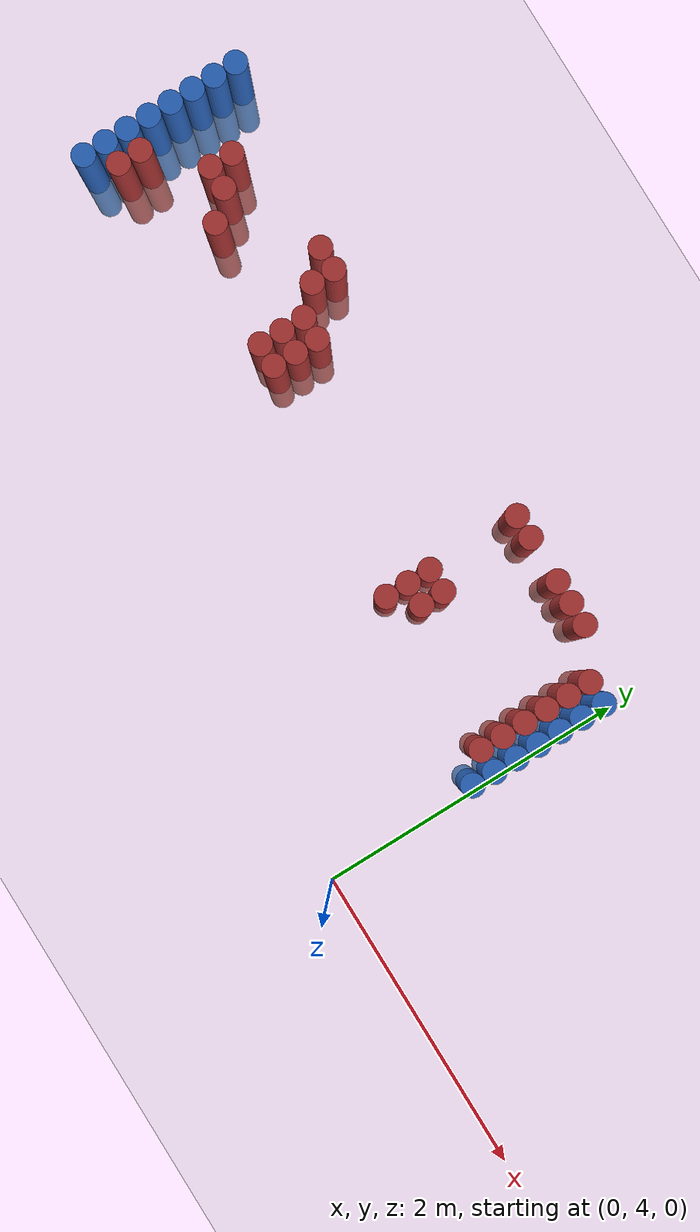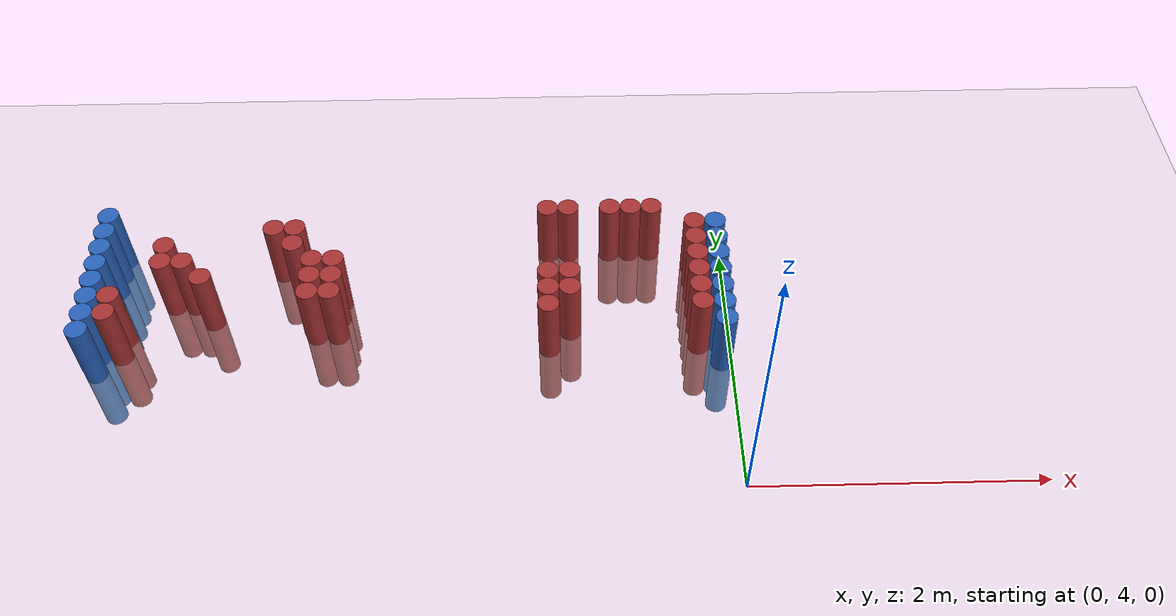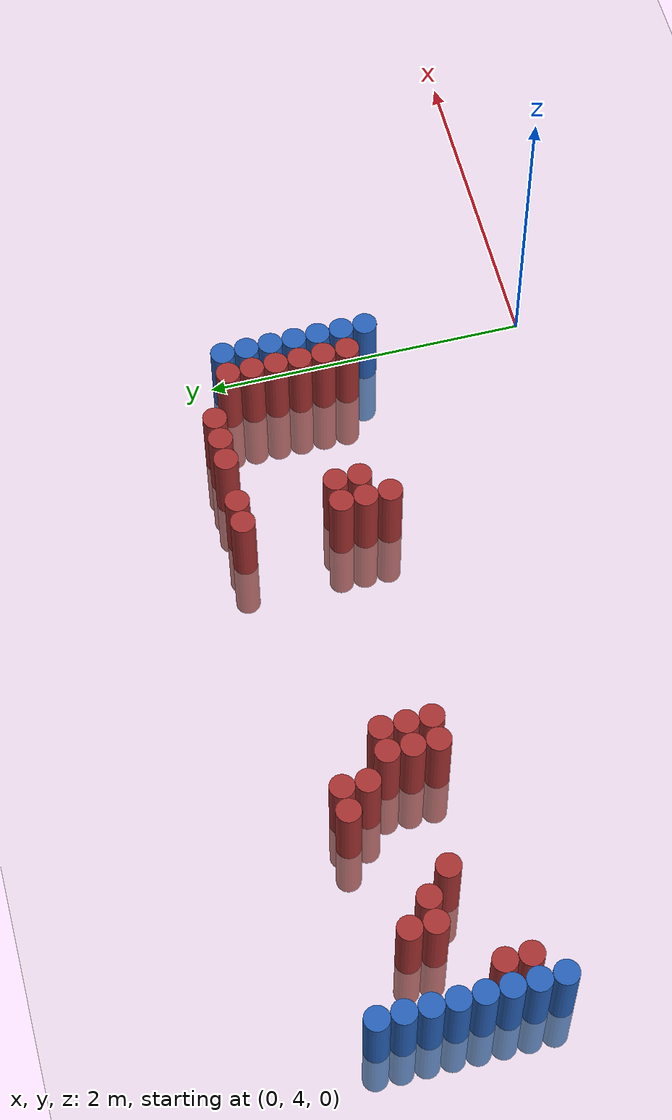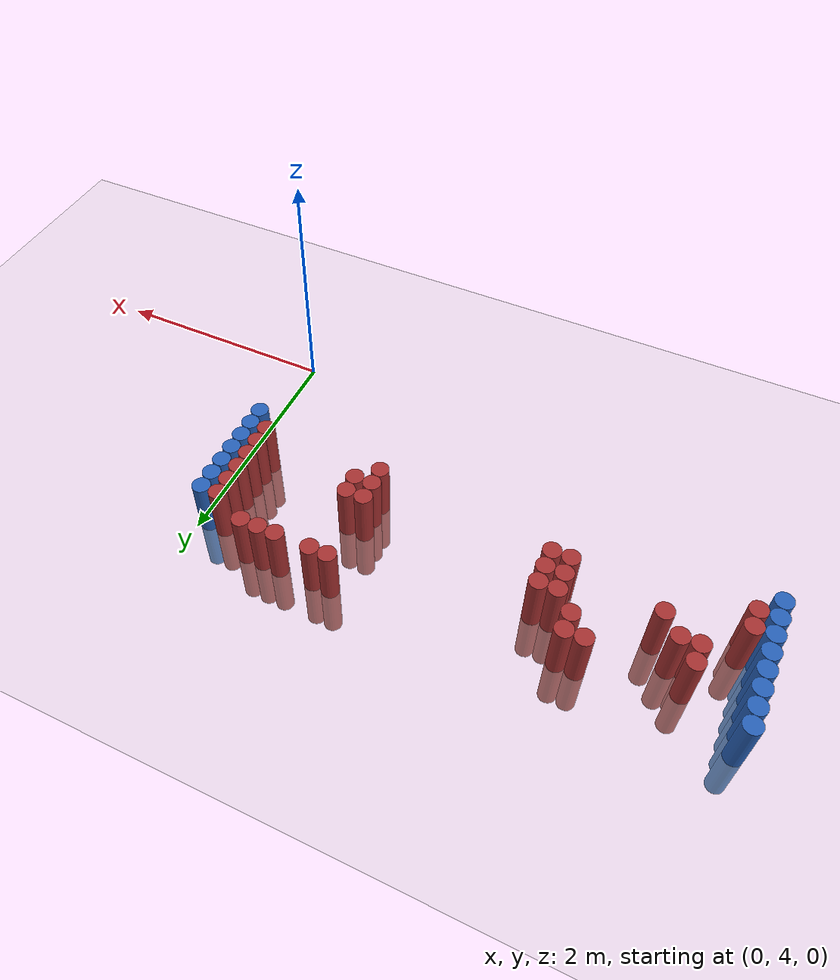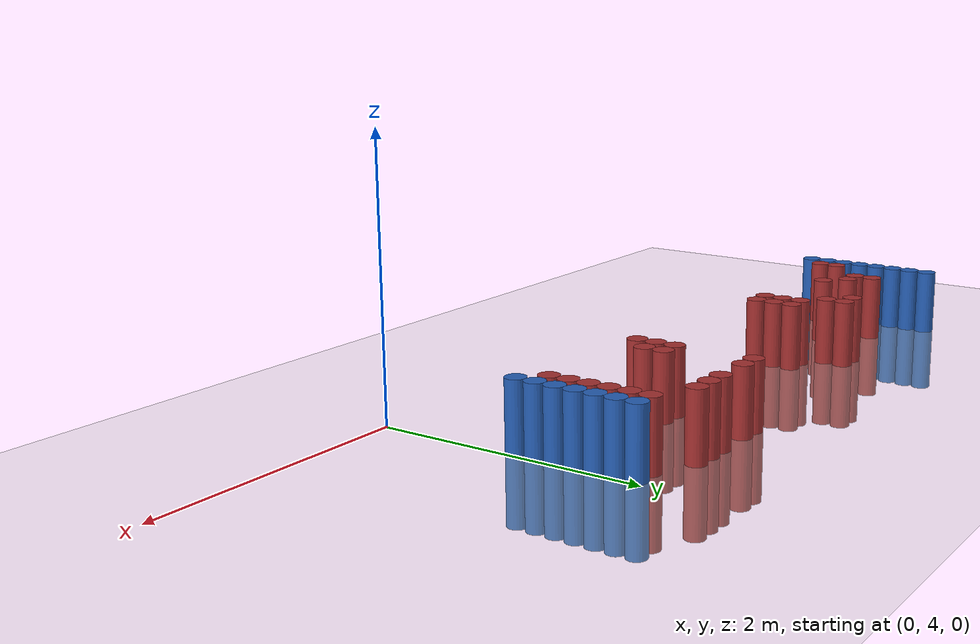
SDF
<sdf version="1.6">
 <world name="world_213">
  <model name="ground_plane">
   <static>1</static>
   <link name="link">
    <collision name="collision">
     <geometry><plane><normal>0 0 1</normal><size>100 100</size></plane></geometry>
     <surface><friction><ode><mu>100</mu><mu2>50</mu2></ode></friction></surface>
    </collision>
    <visual name="visual">
     <cast_shadows>0</cast_shadows>
     <geometry><plane><normal>0 0 1</normal><size>100 100</size></plane></geometry>
     <material>
      <script><uri>file://media/materials/scripts/gazebo.material</uri><name>Gazebo/Grey</name></script>
     </material>
    </visual>
   </link>
  </model>
  <model name="unit_cylinder_94">
   <static>1</static>
   <pose>-0.075000 5.025000 0.000000 0.000000 0.000000 0.000000</pose>
   <link name="link">
    <inertial>
     <mass>1</mass>
     <inertia><ixx>0.145833</ixx><ixy>0</ixy><ixz>0</ixz><iyy>0.145833</iyy><iyz>0</iyz><izz>0.125</izz></inertia>
    </inertial>
    <collision name="collision">
     <geometry><cylinder><radius>0.075000</radius><length>1</length></cylinder></geometry>
    </collision>
    <visual name="visual">
     <geometry><cylinder><radius>0.075000</radius><length>1</length></cylinder></geometry>
     <material>
      <ambient>0.152000 0.379000 0.720000 1</ambient>
      <diffuse>0.152000 0.379000 0.720000 1</diffuse>
     </material>
     <material>
      <script><name>Gazebo/Grey</name><uri>file://media/materials/scripts/gazebo.material</uri></script>
     </material>
    </visual>
   </link>
  </model>
  <model name="unit_cylinder_95">
   <static>1</static>
   <pose>-4.425000 5.025000 0.000000 0.000000 0.000000 0.000000</pose>
   <link name="link">
    <inertial>
     <mass>1</mass>
     <inertia><ixx>0.145833</ixx><ixy>0</ixy><ixz>0</ixz><iyy>0.145833</iyy><iyz>0</iyz><izz>0.125</izz></inertia>
    </inertial>
    <collision name="collision">
     <geometry><cylinder><radius>0.075000</radius><length>1</length></cylinder></geometry>
    </collision>
    <visual name="visual">
     <geometry><cylinder><radius>0.075000</radius><length>1</length></cylinder></geometry>
     <material>
      <ambient>0.152000 0.379000 0.720000 1</ambient>
      <diffuse>0.152000 0.379000 0.720000 1</diffuse>
     </material>
     <material>
      <script><name>Gazebo/Grey</name><uri>file://media/materials/scripts/gazebo.material</uri></script>
     </material>
    </visual>
   </link>
  </model>
  <model name="unit_cylinder_96">
   <static>1</static>
   <pose>-4.425000 5.175000 0.000000 0.000000 0.000000 0.000000</pose>
   <link name="link">
    <inertial>
     <mass>1</mass>
     <inertia><ixx>0.145833</ixx><ixy>0</ixy><ixz>0</ixz><iyy>0.145833</iyy><iyz>0</iyz><izz>0.125</izz></inertia>
    </inertial>
    <collision name="collision">
     <geometry><cylinder><radius>0.075000</radius><length>1</length></cylinder></geometry>
    </collision>
    <visual name="visual">
     <geometry><cylinder><radius>0.075000</radius><length>1</length></cylinder></geometry>
     <material>
      <ambient>0.152000 0.379000 0.720000 1</ambient>
      <diffuse>0.152000 0.379000 0.720000 1</diffuse>
     </material>
     <material>
      <script><name>Gazebo/Grey</name><uri>file://media/materials/scripts/gazebo.material</uri></script>
     </material>
    </visual>
   </link>
  </model>
  <model name="unit_cylinder_97">
   <static>1</static>
   <pose>-4.425000 5.325000 0.000000 0.000000 0.000000 0.000000</pose>
   <link name="link">
    <inertial>
     <mass>1</mass>
     <inertia><ixx>0.145833</ixx><ixy>0</ixy><ixz>0</ixz><iyy>0.145833</iyy><iyz>0</iyz><izz>0.125</izz></inertia>
    </inertial>
    <collision name="collision">
     <geometry><cylinder><radius>0.075000</radius><length>1</length></cylinder></geometry>
    </collision>
    <visual name="visual">
     <geometry><cylinder><radius>0.075000</radius><length>1</length></cylinder></geometry>
     <material>
      <ambient>0.152000 0.379000 0.720000 1</ambient>
      <diffuse>0.152000 0.379000 0.720000 1</diffuse>
     </material>
     <material>
      <script><name>Gazebo/Grey</name><uri>file://media/materials/scripts/gazebo.material</uri></script>
     </material>
    </visual>
   </link>
  </model>
  <model name="unit_cylinder_98">
   <static>1</static>
   <pose>-4.425000 5.475000 0.000000 0.000000 0.000000 0.000000</pose>
   <link name="link">
    <inertial>
     <mass>1</mass>
     <inertia><ixx>0.145833</ixx><ixy>0</ixy><ixz>0</ixz><iyy>0.145833</iyy><iyz>0</iyz><izz>0.125</izz></inertia>
    </inertial>
    <collision name="collision">
     <geometry><cylinder><radius>0.075000</radius><length>1</length></cylinder></geometry>
    </collision>
    <visual name="visual">
     <geometry><cylinder><radius>0.075000</radius><length>1</length></cylinder></geometry>
     <material>
      <ambient>0.152000 0.379000 0.720000 1</ambient>
      <diffuse>0.152000 0.379000 0.720000 1</diffuse>
     </material>
     <material>
      <script><name>Gazebo/Grey</name><uri>file://media/materials/scripts/gazebo.material</uri></script>
     </material>
    </visual>
   </link>
  </model>
  <model name="unit_cylinder_99">
   <static>1</static>
   <pose>-4.425000 5.625000 0.000000 0.000000 0.000000 0.000000</pose>
   <link name="link">
    <inertial>
     <mass>1</mass>
     <inertia><ixx>0.145833</ixx><ixy>0</ixy><ixz>0</ixz><iyy>0.145833</iyy><iyz>0</iyz><izz>0.125</izz></inertia>
    </inertial>
    <collision name="collision">
     <geometry><cylinder><radius>0.075000</radius><length>1</length></cylinder></geometry>
    </collision>
    <visual name="visual">
     <geometry><cylinder><radius>0.075000</radius><length>1</length></cylinder></geometry>
     <material>
      <ambient>0.152000 0.379000 0.720000 1</ambient>
      <diffuse>0.152000 0.379000 0.720000 1</diffuse>
     </material>
     <material>
      <script><name>Gazebo/Grey</name><uri>file://media/materials/scripts/gazebo.material</uri></script>
     </material>
    </visual>
   </link>
  </model>
  <model name="unit_cylinder_100">
   <static>1</static>
   <pose>-4.425000 5.775000 0.000000 0.000000 0.000000 0.000000</pose>
   <link name="link">
    <inertial>
     <mass>1</mass>
     <inertia><ixx>0.145833</ixx><ixy>0</ixy><ixz>0</ixz><iyy>0.145833</iyy><iyz>0</iyz><izz>0.125</izz></inertia>
    </inertial>
    <collision name="collision">
     <geometry><cylinder><radius>0.075000</radius><length>1</length></cylinder></geometry>
    </collision>
    <visual name="visual">
     <geometry><cylinder><radius>0.075000</radius><length>1</length></cylinder></geometry>
     <material>
      <ambient>0.152000 0.379000 0.720000 1</ambient>
      <diffuse>0.152000 0.379000 0.720000 1</diffuse>
     </material>
     <material>
      <script><name>Gazebo/Grey</name><uri>file://media/materials/scripts/gazebo.material</uri></script>
     </material>
    </visual>
   </link>
  </model>
  <model name="unit_cylinder_101">
   <static>1</static>
   <pose>-4.425000 5.925000 0.000000 0.000000 0.000000 0.000000</pose>
   <link name="link">
    <inertial>
     <mass>1</mass>
     <inertia><ixx>0.145833</ixx><ixy>0</ixy><ixz>0</ixz><iyy>0.145833</iyy><iyz>0</iyz><izz>0.125</izz></inertia>
    </inertial>
    <collision name="collision">
     <geometry><cylinder><radius>0.075000</radius><length>1</length></cylinder></geometry>
    </collision>
    <visual name="visual">
     <geometry><cylinder><radius>0.075000</radius><length>1</length></cylinder></geometry>
     <material>
      <ambient>0.152000 0.379000 0.720000 1</ambient>
      <diffuse>0.152000 0.379000 0.720000 1</diffuse>
     </material>
     <material>
      <script><name>Gazebo/Grey</name><uri>file://media/materials/scripts/gazebo.material</uri></script>
     </material>
    </visual>
   </link>
  </model>
  <model name="unit_cylinder_102">
   <static>1</static>
   <pose>-4.425000 6.075000 0.000000 0.000000 0.000000 0.000000</pose>
   <link name="link">
    <inertial>
     <mass>1</mass>
     <inertia><ixx>0.145833</ixx><ixy>0</ixy><ixz>0</ixz><iyy>0.145833</iyy><iyz>0</iyz><izz>0.125</izz></inertia>
    </inertial>
    <collision name="collision">
     <geometry><cylinder><radius>0.075000</radius><length>1</length></cylinder></geometry>
    </collision>
    <visual name="visual">
     <geometry><cylinder><radius>0.075000</radius><length>1</length></cylinder></geometry>
     <material>
      <ambient>0.152000 0.379000 0.720000 1</ambient>
      <diffuse>0.152000 0.379000 0.720000 1</diffuse>
     </material>
     <material>
      <script><name>Gazebo/Grey</name><uri>file://media/materials/scripts/gazebo.material</uri></script>
     </material>
    </visual>
   </link>
  </model>
  <model name="unit_cylinder_126">
   <static>1</static>
   <pose>-4.275000 5.175000 0.000000 0.000000 0.000000 0.000000</pose>
   <link name="link">
    <inertial>
     <mass>1</mass>
     <inertia><ixx>0.145833</ixx><ixy>0</ixy><ixz>0</ixz><iyy>0.145833</iyy><iyz>0</iyz><izz>0.125</izz></inertia>
    </inertial>
    <collision name="collision">
     <geometry><cylinder><radius>0.075000</radius><length>1</length></cylinder></geometry>
    </collision>
    <visual name="visual">
     <geometry><cylinder><radius>0.075000</radius><length>1</length></cylinder></geometry>
     <material>
      <ambient>0.648000 0.192000 0.192000 1</ambient>
      <diffuse>0.648000 0.192000 0.192000 1</diffuse>
     </material>
     <material>
      <script><name>Gazebo/Grey</name><uri>file://media/materials/scripts/gazebo.material</uri></script>
     </material>
    </visual>
   </link>
  </model>
  <model name="unit_cylinder_127">
   <static>1</static>
   <pose>-4.275000 5.325000 0.000000 0.000000 0.000000 0.000000</pose>
   <link name="link">
    <inertial>
     <mass>1</mass>
     <inertia><ixx>0.145833</ixx><ixy>0</ixy><ixz>0</ixz><iyy>0.145833</iyy><iyz>0</iyz><izz>0.125</izz></inertia>
    </inertial>
    <collision name="collision">
     <geometry><cylinder><radius>0.075000</radius><length>1</length></cylinder></geometry>
    </collision>
    <visual name="visual">
     <geometry><cylinder><radius>0.075000</radius><length>1</length></cylinder></geometry>
     <material>
      <ambient>0.648000 0.192000 0.192000 1</ambient>
      <diffuse>0.648000 0.192000 0.192000 1</diffuse>
     </material>
     <material>
      <script><name>Gazebo/Grey</name><uri>file://media/materials/scripts/gazebo.material</uri></script>
     </material>
    </visual>
   </link>
  </model>
  <model name="unit_cylinder_151">
   <static>1</static>
   <pose>-3.975000 5.625000 0.000000 0.000000 0.000000 0.000000</pose>
   <link name="link">
    <inertial>
     <mass>1</mass>
     <inertia><ixx>0.145833</ixx><ixy>0</ixy><ixz>0</ixz><iyy>0.145833</iyy><iyz>0</iyz><izz>0.125</izz></inertia>
    </inertial>
    <collision name="collision">
     <geometry><cylinder><radius>0.075000</radius><length>1</length></cylinder></geometry>
    </collision>
    <visual name="visual">
     <geometry><cylinder><radius>0.075000</radius><length>1</length></cylinder></geometry>
     <material>
      <ambient>0.648000 0.192000 0.192000 1</ambient>
      <diffuse>0.648000 0.192000 0.192000 1</diffuse>
     </material>
     <material>
      <script><name>Gazebo/Grey</name><uri>file://media/materials/scripts/gazebo.material</uri></script>
     </material>
    </visual>
   </link>
  </model>
  <model name="unit_cylinder_152">
   <static>1</static>
   <pose>-3.975000 5.775000 0.000000 0.000000 0.000000 0.000000</pose>
   <link name="link">
    <inertial>
     <mass>1</mass>
     <inertia><ixx>0.145833</ixx><ixy>0</ixy><ixz>0</ixz><iyy>0.145833</iyy><iyz>0</iyz><izz>0.125</izz></inertia>
    </inertial>
    <collision name="collision">
     <geometry><cylinder><radius>0.075000</radius><length>1</length></cylinder></geometry>
    </collision>
    <visual name="visual">
     <geometry><cylinder><radius>0.075000</radius><length>1</length></cylinder></geometry>
     <material>
      <ambient>0.648000 0.192000 0.192000 1</ambient>
      <diffuse>0.648000 0.192000 0.192000 1</diffuse>
     </material>
     <material>
      <script><name>Gazebo/Grey</name><uri>file://media/materials/scripts/gazebo.material</uri></script>
     </material>
    </visual>
   </link>
  </model>
  <model name="unit_cylinder_157">
   <static>1</static>
   <pose>-3.825000 5.625000 0.000000 0.000000 0.000000 0.000000</pose>
   <link name="link">
    <inertial>
     <mass>1</mass>
     <inertia><ixx>0.145833</ixx><ixy>0</ixy><ixz>0</ixz><iyy>0.145833</iyy><iyz>0</iyz><izz>0.125</izz></inertia>
    </inertial>
    <collision name="collision">
     <geometry><cylinder><radius>0.075000</radius><length>1</length></cylinder></geometry>
    </collision>
    <visual name="visual">
     <geometry><cylinder><radius>0.075000</radius><length>1</length></cylinder></geometry>
     <material>
      <ambient>0.648000 0.192000 0.192000 1</ambient>
      <diffuse>0.648000 0.192000 0.192000 1</diffuse>
     </material>
     <material>
      <script><name>Gazebo/Grey</name><uri>file://media/materials/scripts/gazebo.material</uri></script>
     </material>
    </visual>
   </link>
  </model>
  <model name="unit_cylinder_162">
   <static>1</static>
   <pose>-3.675000 5.475000 0.000000 0.000000 0.000000 0.000000</pose>
   <link name="link">
    <inertial>
     <mass>1</mass>
     <inertia><ixx>0.145833</ixx><ixy>0</ixy><ixz>0</ixz><iyy>0.145833</iyy><iyz>0</iyz><izz>0.125</izz></inertia>
    </inertial>
    <collision name="collision">
     <geometry><cylinder><radius>0.075000</radius><length>1</length></cylinder></geometry>
    </collision>
    <visual name="visual">
     <geometry><cylinder><radius>0.075000</radius><length>1</length></cylinder></geometry>
     <material>
      <ambient>0.648000 0.192000 0.192000 1</ambient>
      <diffuse>0.648000 0.192000 0.192000 1</diffuse>
     </material>
     <material>
      <script><name>Gazebo/Grey</name><uri>file://media/materials/scripts/gazebo.material</uri></script>
     </material>
    </visual>
   </link>
  </model>
  <model name="unit_cylinder_173">
   <static>1</static>
   <pose>-3.225000 5.925000 0.000000 0.000000 0.000000 0.000000</pose>
   <link name="link">
    <inertial>
     <mass>1</mass>
     <inertia><ixx>0.145833</ixx><ixy>0</ixy><ixz>0</ixz><iyy>0.145833</iyy><iyz>0</iyz><izz>0.125</izz></inertia>
    </inertial>
    <collision name="collision">
     <geometry><cylinder><radius>0.075000</radius><length>1</length></cylinder></geometry>
    </collision>
    <visual name="visual">
     <geometry><cylinder><radius>0.075000</radius><length>1</length></cylinder></geometry>
     <material>
      <ambient>0.648000 0.192000 0.192000 1</ambient>
      <diffuse>0.648000 0.192000 0.192000 1</diffuse>
     </material>
     <material>
      <script><name>Gazebo/Grey</name><uri>file://media/materials/scripts/gazebo.material</uri></script>
     </material>
    </visual>
   </link>
  </model>
  <model name="unit_cylinder_174">
   <static>1</static>
   <pose>-3.075000 5.775000 0.000000 0.000000 0.000000 0.000000</pose>
   <link name="link">
    <inertial>
     <mass>1</mass>
     <inertia><ixx>0.145833</ixx><ixy>0</ixy><ixz>0</ixz><iyy>0.145833</iyy><iyz>0</iyz><izz>0.125</izz></inertia>
    </inertial>
    <collision name="collision">
     <geometry><cylinder><radius>0.075000</radius><length>1</length></cylinder></geometry>
    </collision>
    <visual name="visual">
     <geometry><cylinder><radius>0.075000</radius><length>1</length></cylinder></geometry>
     <material>
      <ambient>0.648000 0.192000 0.192000 1</ambient>
      <diffuse>0.648000 0.192000 0.192000 1</diffuse>
     </material>
     <material>
      <script><name>Gazebo/Grey</name><uri>file://media/materials/scripts/gazebo.material</uri></script>
     </material>
    </visual>
   </link>
  </model>
  <model name="unit_cylinder_175">
   <static>1</static>
   <pose>-3.075000 5.925000 0.000000 0.000000 0.000000 0.000000</pose>
   <link name="link">
    <inertial>
     <mass>1</mass>
     <inertia><ixx>0.145833</ixx><ixy>0</ixy><ixz>0</ixz><iyy>0.145833</iyy><iyz>0</iyz><izz>0.125</izz></inertia>
    </inertial>
    <collision name="collision">
     <geometry><cylinder><radius>0.075000</radius><length>1</length></cylinder></geometry>
    </collision>
    <visual name="visual">
     <geometry><cylinder><radius>0.075000</radius><length>1</length></cylinder></geometry>
     <material>
      <ambient>0.648000 0.192000 0.192000 1</ambient>
      <diffuse>0.648000 0.192000 0.192000 1</diffuse>
     </material>
     <material>
      <script><name>Gazebo/Grey</name><uri>file://media/materials/scripts/gazebo.material</uri></script>
     </material>
    </visual>
   </link>
  </model>
  <model name="unit_cylinder_176">
   <static>1</static>
   <pose>-2.925000 5.325000 0.000000 0.000000 0.000000 0.000000</pose>
   <link name="link">
    <inertial>
     <mass>1</mass>
     <inertia><ixx>0.145833</ixx><ixy>0</ixy><ixz>0</ixz><iyy>0.145833</iyy><iyz>0</iyz><izz>0.125</izz></inertia>
    </inertial>
    <collision name="collision">
     <geometry><cylinder><radius>0.075000</radius><length>1</length></cylinder></geometry>
    </collision>
    <visual name="visual">
     <geometry><cylinder><radius>0.075000</radius><length>1</length></cylinder></geometry>
     <material>
      <ambient>0.648000 0.192000 0.192000 1</ambient>
      <diffuse>0.648000 0.192000 0.192000 1</diffuse>
     </material>
     <material>
      <script><name>Gazebo/Grey</name><uri>file://media/materials/scripts/gazebo.material</uri></script>
     </material>
    </visual>
   </link>
  </model>
  <model name="unit_cylinder_177">
   <static>1</static>
   <pose>-2.925000 5.475000 0.000000 0.000000 0.000000 0.000000</pose>
   <link name="link">
    <inertial>
     <mass>1</mass>
     <inertia><ixx>0.145833</ixx><ixy>0</ixy><ixz>0</ixz><iyy>0.145833</iyy><iyz>0</iyz><izz>0.125</izz></inertia>
    </inertial>
    <collision name="collision">
     <geometry><cylinder><radius>0.075000</radius><length>1</length></cylinder></geometry>
    </collision>
    <visual name="visual">
     <geometry><cylinder><radius>0.075000</radius><length>1</length></cylinder></geometry>
     <material>
      <ambient>0.648000 0.192000 0.192000 1</ambient>
      <diffuse>0.648000 0.192000 0.192000 1</diffuse>
     </material>
     <material>
      <script><name>Gazebo/Grey</name><uri>file://media/materials/scripts/gazebo.material</uri></script>
     </material>
    </visual>
   </link>
  </model>
  <model name="unit_cylinder_178">
   <static>1</static>
   <pose>-2.925000 5.625000 0.000000 0.000000 0.000000 0.000000</pose>
   <link name="link">
    <inertial>
     <mass>1</mass>
     <inertia><ixx>0.145833</ixx><ixy>0</ixy><ixz>0</ixz><iyy>0.145833</iyy><iyz>0</iyz><izz>0.125</izz></inertia>
    </inertial>
    <collision name="collision">
     <geometry><cylinder><radius>0.075000</radius><length>1</length></cylinder></geometry>
    </collision>
    <visual name="visual">
     <geometry><cylinder><radius>0.075000</radius><length>1</length></cylinder></geometry>
     <material>
      <ambient>0.648000 0.192000 0.192000 1</ambient>
      <diffuse>0.648000 0.192000 0.192000 1</diffuse>
     </material>
     <material>
      <script><name>Gazebo/Grey</name><uri>file://media/materials/scripts/gazebo.material</uri></script>
     </material>
    </visual>
   </link>
  </model>
  <model name="unit_cylinder_179">
   <static>1</static>
   <pose>-2.775000 5.325000 0.000000 0.000000 0.000000 0.000000</pose>
   <link name="link">
    <inertial>
     <mass>1</mass>
     <inertia><ixx>0.145833</ixx><ixy>0</ixy><ixz>0</ixz><iyy>0.145833</iyy><iyz>0</iyz><izz>0.125</izz></inertia>
    </inertial>
    <collision name="collision">
     <geometry><cylinder><radius>0.075000</radius><length>1</length></cylinder></geometry>
    </collision>
    <visual name="visual">
     <geometry><cylinder><radius>0.075000</radius><length>1</length></cylinder></geometry>
     <material>
      <ambient>0.648000 0.192000 0.192000 1</ambient>
      <diffuse>0.648000 0.192000 0.192000 1</diffuse>
     </material>
     <material>
      <script><name>Gazebo/Grey</name><uri>file://media/materials/scripts/gazebo.material</uri></script>
     </material>
    </visual>
   </link>
  </model>
  <model name="unit_cylinder_180">
   <static>1</static>
   <pose>-2.775000 5.475000 0.000000 0.000000 0.000000 0.000000</pose>
   <link name="link">
    <inertial>
     <mass>1</mass>
     <inertia><ixx>0.145833</ixx><ixy>0</ixy><ixz>0</ixz><iyy>0.145833</iyy><iyz>0</iyz><izz>0.125</izz></inertia>
    </inertial>
    <collision name="collision">
     <geometry><cylinder><radius>0.075000</radius><length>1</length></cylinder></geometry>
    </collision>
    <visual name="visual">
     <geometry><cylinder><radius>0.075000</radius><length>1</length></cylinder></geometry>
     <material>
      <ambient>0.648000 0.192000 0.192000 1</ambient>
      <diffuse>0.648000 0.192000 0.192000 1</diffuse>
     </material>
     <material>
      <script><name>Gazebo/Grey</name><uri>file://media/materials/scripts/gazebo.material</uri></script>
     </material>
    </visual>
   </link>
  </model>
  <model name="unit_cylinder_181">
   <static>1</static>
   <pose>-2.775000 5.625000 0.000000 0.000000 0.000000 0.000000</pose>
   <link name="link">
    <inertial>
     <mass>1</mass>
     <inertia><ixx>0.145833</ixx><ixy>0</ixy><ixz>0</ixz><iyy>0.145833</iyy><iyz>0</iyz><izz>0.125</izz></inertia>
    </inertial>
    <collision name="collision">
     <geometry><cylinder><radius>0.075000</radius><length>1</length></cylinder></geometry>
    </collision>
    <visual name="visual">
     <geometry><cylinder><radius>0.075000</radius><length>1</length></cylinder></geometry>
     <material>
      <ambient>0.648000 0.192000 0.192000 1</ambient>
      <diffuse>0.648000 0.192000 0.192000 1</diffuse>
     </material>
     <material>
      <script><name>Gazebo/Grey</name><uri>file://media/materials/scripts/gazebo.material</uri></script>
     </material>
    </visual>
   </link>
  </model>
  <model name="unit_cylinder_201">
   <static>1</static>
   <pose>-1.275000 5.175000 0.000000 0.000000 0.000000 0.000000</pose>
   <link name="link">
    <inertial>
     <mass>1</mass>
     <inertia><ixx>0.145833</ixx><ixy>0</ixy><ixz>0</ixz><iyy>0.145833</iyy><iyz>0</iyz><izz>0.125</izz></inertia>
    </inertial>
    <collision name="collision">
     <geometry><cylinder><radius>0.075000</radius><length>1</length></cylinder></geometry>
    </collision>
    <visual name="visual">
     <geometry><cylinder><radius>0.075000</radius><length>1</length></cylinder></geometry>
     <material>
      <ambient>0.648000 0.192000 0.192000 1</ambient>
      <diffuse>0.648000 0.192000 0.192000 1</diffuse>
     </material>
     <material>
      <script><name>Gazebo/Grey</name><uri>file://media/materials/scripts/gazebo.material</uri></script>
     </material>
    </visual>
   </link>
  </model>
  <model name="unit_cylinder_202">
   <static>1</static>
   <pose>-1.275000 5.325000 0.000000 0.000000 0.000000 0.000000</pose>
   <link name="link">
    <inertial>
     <mass>1</mass>
     <inertia><ixx>0.145833</ixx><ixy>0</ixy><ixz>0</ixz><iyy>0.145833</iyy><iyz>0</iyz><izz>0.125</izz></inertia>
    </inertial>
    <collision name="collision">
     <geometry><cylinder><radius>0.075000</radius><length>1</length></cylinder></geometry>
    </collision>
    <visual name="visual">
     <geometry><cylinder><radius>0.075000</radius><length>1</length></cylinder></geometry>
     <material>
      <ambient>0.648000 0.192000 0.192000 1</ambient>
      <diffuse>0.648000 0.192000 0.192000 1</diffuse>
     </material>
     <material>
      <script><name>Gazebo/Grey</name><uri>file://media/materials/scripts/gazebo.material</uri></script>
     </material>
    </visual>
   </link>
  </model>
  <model name="unit_cylinder_203">
   <static>1</static>
   <pose>-1.275000 5.475000 0.000000 0.000000 0.000000 0.000000</pose>
   <link name="link">
    <inertial>
     <mass>1</mass>
     <inertia><ixx>0.145833</ixx><ixy>0</ixy><ixz>0</ixz><iyy>0.145833</iyy><iyz>0</iyz><izz>0.125</izz></inertia>
    </inertial>
    <collision name="collision">
     <geometry><cylinder><radius>0.075000</radius><length>1</length></cylinder></geometry>
    </collision>
    <visual name="visual">
     <geometry><cylinder><radius>0.075000</radius><length>1</length></cylinder></geometry>
     <material>
      <ambient>0.648000 0.192000 0.192000 1</ambient>
      <diffuse>0.648000 0.192000 0.192000 1</diffuse>
     </material>
     <material>
      <script><name>Gazebo/Grey</name><uri>file://media/materials/scripts/gazebo.material</uri></script>
     </material>
    </visual>
   </link>
  </model>
  <model name="unit_cylinder_204">
   <static>1</static>
   <pose>-1.275000 6.075000 0.000000 0.000000 0.000000 0.000000</pose>
   <link name="link">
    <inertial>
     <mass>1</mass>
     <inertia><ixx>0.145833</ixx><ixy>0</ixy><ixz>0</ixz><iyy>0.145833</iyy><iyz>0</iyz><izz>0.125</izz></inertia>
    </inertial>
    <collision name="collision">
     <geometry><cylinder><radius>0.075000</radius><length>1</length></cylinder></geometry>
    </collision>
    <visual name="visual">
     <geometry><cylinder><radius>0.075000</radius><length>1</length></cylinder></geometry>
     <material>
      <ambient>0.648000 0.192000 0.192000 1</ambient>
      <diffuse>0.648000 0.192000 0.192000 1</diffuse>
     </material>
     <material>
      <script><name>Gazebo/Grey</name><uri>file://media/materials/scripts/gazebo.material</uri></script>
     </material>
    </visual>
   </link>
  </model>
  <model name="unit_cylinder_208">
   <static>1</static>
   <pose>-1.125000 5.325000 0.000000 0.000000 0.000000 0.000000</pose>
   <link name="link">
    <inertial>
     <mass>1</mass>
     <inertia><ixx>0.145833</ixx><ixy>0</ixy><ixz>0</ixz><iyy>0.145833</iyy><iyz>0</iyz><izz>0.125</izz></inertia>
    </inertial>
    <collision name="collision">
     <geometry><cylinder><radius>0.075000</radius><length>1</length></cylinder></geometry>
    </collision>
    <visual name="visual">
     <geometry><cylinder><radius>0.075000</radius><length>1</length></cylinder></geometry>
     <material>
      <ambient>0.648000 0.192000 0.192000 1</ambient>
      <diffuse>0.648000 0.192000 0.192000 1</diffuse>
     </material>
     <material>
      <script><name>Gazebo/Grey</name><uri>file://media/materials/scripts/gazebo.material</uri></script>
     </material>
    </visual>
   </link>
  </model>
  <model name="unit_cylinder_209">
   <static>1</static>
   <pose>-1.125000 5.475000 0.000000 0.000000 0.000000 0.000000</pose>
   <link name="link">
    <inertial>
     <mass>1</mass>
     <inertia><ixx>0.145833</ixx><ixy>0</ixy><ixz>0</ixz><iyy>0.145833</iyy><iyz>0</iyz><izz>0.125</izz></inertia>
    </inertial>
    <collision name="collision">
     <geometry><cylinder><radius>0.075000</radius><length>1</length></cylinder></geometry>
    </collision>
    <visual name="visual">
     <geometry><cylinder><radius>0.075000</radius><length>1</length></cylinder></geometry>
     <material>
      <ambient>0.648000 0.192000 0.192000 1</ambient>
      <diffuse>0.648000 0.192000 0.192000 1</diffuse>
     </material>
     <material>
      <script><name>Gazebo/Grey</name><uri>file://media/materials/scripts/gazebo.material</uri></script>
     </material>
    </visual>
   </link>
  </model>
  <model name="unit_cylinder_210">
   <static>1</static>
   <pose>-1.125000 6.075000 0.000000 0.000000 0.000000 0.000000</pose>
   <link name="link">
    <inertial>
     <mass>1</mass>
     <inertia><ixx>0.145833</ixx><ixy>0</ixy><ixz>0</ixz><iyy>0.145833</iyy><iyz>0</iyz><izz>0.125</izz></inertia>
    </inertial>
    <collision name="collision">
     <geometry><cylinder><radius>0.075000</radius><length>1</length></cylinder></geometry>
    </collision>
    <visual name="visual">
     <geometry><cylinder><radius>0.075000</radius><length>1</length></cylinder></geometry>
     <material>
      <ambient>0.648000 0.192000 0.192000 1</ambient>
      <diffuse>0.648000 0.192000 0.192000 1</diffuse>
     </material>
     <material>
      <script><name>Gazebo/Grey</name><uri>file://media/materials/scripts/gazebo.material</uri></script>
     </material>
    </visual>
   </link>
  </model>
  <model name="unit_cylinder_223">
   <static>1</static>
   <pose>-0.825000 6.075000 0.000000 0.000000 0.000000 0.000000</pose>
   <link name="link">
    <inertial>
     <mass>1</mass>
     <inertia><ixx>0.145833</ixx><ixy>0</ixy><ixz>0</ixz><iyy>0.145833</iyy><iyz>0</iyz><izz>0.125</izz></inertia>
    </inertial>
    <collision name="collision">
     <geometry><cylinder><radius>0.075000</radius><length>1</length></cylinder></geometry>
    </collision>
    <visual name="visual">
     <geometry><cylinder><radius>0.075000</radius><length>1</length></cylinder></geometry>
     <material>
      <ambient>0.648000 0.192000 0.192000 1</ambient>
      <diffuse>0.648000 0.192000 0.192000 1</diffuse>
     </material>
     <material>
      <script><name>Gazebo/Grey</name><uri>file://media/materials/scripts/gazebo.material</uri></script>
     </material>
    </visual>
   </link>
  </model>
  <model name="unit_cylinder_225">
   <static>1</static>
   <pose>-0.675000 6.075000 0.000000 0.000000 0.000000 0.000000</pose>
   <link name="link">
    <inertial>
     <mass>1</mass>
     <inertia><ixx>0.145833</ixx><ixy>0</ixy><ixz>0</ixz><iyy>0.145833</iyy><iyz>0</iyz><izz>0.125</izz></inertia>
    </inertial>
    <collision name="collision">
     <geometry><cylinder><radius>0.075000</radius><length>1</length></cylinder></geometry>
    </collision>
    <visual name="visual">
     <geometry><cylinder><radius>0.075000</radius><length>1</length></cylinder></geometry>
     <material>
      <ambient>0.648000 0.192000 0.192000 1</ambient>
      <diffuse>0.648000 0.192000 0.192000 1</diffuse>
     </material>
     <material>
      <script><name>Gazebo/Grey</name><uri>file://media/materials/scripts/gazebo.material</uri></script>
     </material>
    </visual>
   </link>
  </model>
  <model name="unit_cylinder_227">
   <static>1</static>
   <pose>-0.525000 6.075000 0.000000 0.000000 0.000000 0.000000</pose>
   <link name="link">
    <inertial>
     <mass>1</mass>
     <inertia><ixx>0.145833</ixx><ixy>0</ixy><ixz>0</ixz><iyy>0.145833</iyy><iyz>0</iyz><izz>0.125</izz></inertia>
    </inertial>
    <collision name="collision">
     <geometry><cylinder><radius>0.075000</radius><length>1</length></cylinder></geometry>
    </collision>
    <visual name="visual">
     <geometry><cylinder><radius>0.075000</radius><length>1</length></cylinder></geometry>
     <material>
      <ambient>0.648000 0.192000 0.192000 1</ambient>
      <diffuse>0.648000 0.192000 0.192000 1</diffuse>
     </material>
     <material>
      <script><name>Gazebo/Grey</name><uri>file://media/materials/scripts/gazebo.material</uri></script>
     </material>
    </visual>
   </link>
  </model>
  <model name="unit_cylinder_232">
   <static>1</static>
   <pose>-0.225000 5.175000 0.000000 0.000000 0.000000 0.000000</pose>
   <link name="link">
    <inertial>
     <mass>1</mass>
     <inertia><ixx>0.145833</ixx><ixy>0</ixy><ixz>0</ixz><iyy>0.145833</iyy><iyz>0</iyz><izz>0.125</izz></inertia>
    </inertial>
    <collision name="collision">
     <geometry><cylinder><radius>0.075000</radius><length>1</length></cylinder></geometry>
    </collision>
    <visual name="visual">
     <geometry><cylinder><radius>0.075000</radius><length>1</length></cylinder></geometry>
     <material>
      <ambient>0.648000 0.192000 0.192000 1</ambient>
      <diffuse>0.648000 0.192000 0.192000 1</diffuse>
     </material>
     <material>
      <script><name>Gazebo/Grey</name><uri>file://media/materials/scripts/gazebo.material</uri></script>
     </material>
    </visual>
   </link>
  </model>
  <model name="unit_cylinder_233">
   <static>1</static>
   <pose>-0.225000 5.325000 0.000000 0.000000 0.000000 0.000000</pose>
   <link name="link">
    <inertial>
     <mass>1</mass>
     <inertia><ixx>0.145833</ixx><ixy>0</ixy><ixz>0</ixz><iyy>0.145833</iyy><iyz>0</iyz><izz>0.125</izz></inertia>
    </inertial>
    <collision name="collision">
     <geometry><cylinder><radius>0.075000</radius><length>1</length></cylinder></geometry>
    </collision>
    <visual name="visual">
     <geometry><cylinder><radius>0.075000</radius><length>1</length></cylinder></geometry>
     <material>
      <ambient>0.648000 0.192000 0.192000 1</ambient>
      <diffuse>0.648000 0.192000 0.192000 1</diffuse>
     </material>
     <material>
      <script><name>Gazebo/Grey</name><uri>file://media/materials/scripts/gazebo.material</uri></script>
     </material>
    </visual>
   </link>
  </model>
  <model name="unit_cylinder_234">
   <static>1</static>
   <pose>-0.225000 5.475000 0.000000 0.000000 0.000000 0.000000</pose>
   <link name="link">
    <inertial>
     <mass>1</mass>
     <inertia><ixx>0.145833</ixx><ixy>0</ixy><ixz>0</ixz><iyy>0.145833</iyy><iyz>0</iyz><izz>0.125</izz></inertia>
    </inertial>
    <collision name="collision">
     <geometry><cylinder><radius>0.075000</radius><length>1</length></cylinder></geometry>
    </collision>
    <visual name="visual">
     <geometry><cylinder><radius>0.075000</radius><length>1</length></cylinder></geometry>
     <material>
      <ambient>0.648000 0.192000 0.192000 1</ambient>
      <diffuse>0.648000 0.192000 0.192000 1</diffuse>
     </material>
     <material>
      <script><name>Gazebo/Grey</name><uri>file://media/materials/scripts/gazebo.material</uri></script>
     </material>
    </visual>
   </link>
  </model>
  <model name="unit_cylinder_235">
   <static>1</static>
   <pose>-0.225000 5.625000 0.000000 0.000000 0.000000 0.000000</pose>
   <link name="link">
    <inertial>
     <mass>1</mass>
     <inertia><ixx>0.145833</ixx><ixy>0</ixy><ixz>0</ixz><iyy>0.145833</iyy><iyz>0</iyz><izz>0.125</izz></inertia>
    </inertial>
    <collision name="collision">
     <geometry><cylinder><radius>0.075000</radius><length>1</length></cylinder></geometry>
    </collision>
    <visual name="visual">
     <geometry><cylinder><radius>0.075000</radius><length>1</length></cylinder></geometry>
     <material>
      <ambient>0.648000 0.192000 0.192000 1</ambient>
      <diffuse>0.648000 0.192000 0.192000 1</diffuse>
     </material>
     <material>
      <script><name>Gazebo/Grey</name><uri>file://media/materials/scripts/gazebo.material</uri></script>
     </material>
    </visual>
   </link>
  </model>
  <model name="unit_cylinder_236">
   <static>1</static>
   <pose>-0.225000 5.775000 0.000000 0.000000 0.000000 0.000000</pose>
   <link name="link">
    <inertial>
     <mass>1</mass>
     <inertia><ixx>0.145833</ixx><ixy>0</ixy><ixz>0</ixz><iyy>0.145833</iyy><iyz>0</iyz><izz>0.125</izz></inertia>
    </inertial>
    <collision name="collision">
     <geometry><cylinder><radius>0.075000</radius><length>1</length></cylinder></geometry>
    </collision>
    <visual name="visual">
     <geometry><cylinder><radius>0.075000</radius><length>1</length></cylinder></geometry>
     <material>
      <ambient>0.648000 0.192000 0.192000 1</ambient>
      <diffuse>0.648000 0.192000 0.192000 1</diffuse>
     </material>
     <material>
      <script><name>Gazebo/Grey</name><uri>file://media/materials/scripts/gazebo.material</uri></script>
     </material>
    </visual>
   </link>
  </model>
  <model name="unit_cylinder_237">
   <static>1</static>
   <pose>-0.225000 5.925000 0.000000 0.000000 0.000000 0.000000</pose>
   <link name="link">
    <inertial>
     <mass>1</mass>
     <inertia><ixx>0.145833</ixx><ixy>0</ixy><ixz>0</ixz><iyy>0.145833</iyy><iyz>0</iyz><izz>0.125</izz></inertia>
    </inertial>
    <collision name="collision">
     <geometry><cylinder><radius>0.075000</radius><length>1</length></cylinder></geometry>
    </collision>
    <visual name="visual">
     <geometry><cylinder><radius>0.075000</radius><length>1</length></cylinder></geometry>
     <material>
      <ambient>0.648000 0.192000 0.192000 1</ambient>
      <diffuse>0.648000 0.192000 0.192000 1</diffuse>
     </material>
     <material>
      <script><name>Gazebo/Grey</name><uri>file://media/materials/scripts/gazebo.material</uri></script>
     </material>
    </visual>
   </link>
  </model>
  <model name="unit_cylinder_249">
   <static>1</static>
   <pose>-0.075000 5.175000 0.000000 0.000000 0.000000 0.000000</pose>
   <link name="link">
    <inertial>
     <mass>1</mass>
     <inertia><ixx>0.145833</ixx><ixy>0</ixy><ixz>0</ixz><iyy>0.145833</iyy><iyz>0</iyz><izz>0.125</izz></inertia>
    </inertial>
    <collision name="collision">
     <geometry><cylinder><radius>0.075000</radius><length>1</length></cylinder></geometry>
    </collision>
    <visual name="visual">
     <geometry><cylinder><radius>0.075000</radius><length>1</length></cylinder></geometry>
     <material>
      <ambient>0.152000 0.379000 0.720000 1</ambient>
      <diffuse>0.152000 0.379000 0.720000 1</diffuse>
     </material>
     <material>
      <script><name>Gazebo/Grey</name><uri>file://media/materials/scripts/gazebo.material</uri></script>
     </material>
    </visual>
   </link>
  </model>
  <model name="unit_cylinder_250">
   <static>1</static>
   <pose>-0.075000 5.325000 0.000000 0.000000 0.000000 0.000000</pose>
   <link name="link">
    <inertial>
     <mass>1</mass>
     <inertia><ixx>0.145833</ixx><ixy>0</ixy><ixz>0</ixz><iyy>0.145833</iyy><iyz>0</iyz><izz>0.125</izz></inertia>
    </inertial>
    <collision name="collision">
     <geometry><cylinder><radius>0.075000</radius><length>1</length></cylinder></geometry>
    </collision>
    <visual name="visual">
     <geometry><cylinder><radius>0.075000</radius><length>1</length></cylinder></geometry>
     <material>
      <ambient>0.152000 0.379000 0.720000 1</ambient>
      <diffuse>0.152000 0.379000 0.720000 1</diffuse>
     </material>
     <material>
      <script><name>Gazebo/Grey</name><uri>file://media/materials/scripts/gazebo.material</uri></script>
     </material>
    </visual>
   </link>
  </model>
  <model name="unit_cylinder_251">
   <static>1</static>
   <pose>-0.075000 5.475000 0.000000 0.000000 0.000000 0.000000</pose>
   <link name="link">
    <inertial>
     <mass>1</mass>
     <inertia><ixx>0.145833</ixx><ixy>0</ixy><ixz>0</ixz><iyy>0.145833</iyy><iyz>0</iyz><izz>0.125</izz></inertia>
    </inertial>
    <collision name="collision">
     <geometry><cylinder><radius>0.075000</radius><length>1</length></cylinder></geometry>
    </collision>
    <visual name="visual">
     <geometry><cylinder><radius>0.075000</radius><length>1</length></cylinder></geometry>
     <material>
      <ambient>0.152000 0.379000 0.720000 1</ambient>
      <diffuse>0.152000 0.379000 0.720000 1</diffuse>
     </material>
     <material>
      <script><name>Gazebo/Grey</name><uri>file://media/materials/scripts/gazebo.material</uri></script>
     </material>
    </visual>
   </link>
  </model>
  <model name="unit_cylinder_252">
   <static>1</static>
   <pose>-0.075000 5.625000 0.000000 0.000000 0.000000 0.000000</pose>
   <link name="link">
    <inertial>
     <mass>1</mass>
     <inertia><ixx>0.145833</ixx><ixy>0</ixy><ixz>0</ixz><iyy>0.145833</iyy><iyz>0</iyz><izz>0.125</izz></inertia>
    </inertial>
    <collision name="collision">
     <geometry><cylinder><radius>0.075000</radius><length>1</length></cylinder></geometry>
    </collision>
    <visual name="visual">
     <geometry><cylinder><radius>0.075000</radius><length>1</length></cylinder></geometry>
     <material>
      <ambient>0.152000 0.379000 0.720000 1</ambient>
      <diffuse>0.152000 0.379000 0.720000 1</diffuse>
     </material>
     <material>
      <script><name>Gazebo/Grey</name><uri>file://media/materials/scripts/gazebo.material</uri></script>
     </material>
    </visual>
   </link>
  </model>
  <model name="unit_cylinder_253">
   <static>1</static>
   <pose>-0.075000 5.775000 0.000000 0.000000 0.000000 0.000000</pose>
   <link name="link">
    <inertial>
     <mass>1</mass>
     <inertia><ixx>0.145833</ixx><ixy>0</ixy><ixz>0</ixz><iyy>0.145833</iyy><iyz>0</iyz><izz>0.125</izz></inertia>
    </inertial>
    <collision name="collision">
     <geometry><cylinder><radius>0.075000</radius><length>1</length></cylinder></geometry>
    </collision>
    <visual name="visual">
     <geometry><cylinder><radius>0.075000</radius><length>1</length></cylinder></geometry>
     <material>
      <ambient>0.152000 0.379000 0.720000 1</ambient>
      <diffuse>0.152000 0.379000 0.720000 1</diffuse>
     </material>
     <material>
      <script><name>Gazebo/Grey</name><uri>file://media/materials/scripts/gazebo.material</uri></script>
     </material>
    </visual>
   </link>
  </model>
  <model name="unit_cylinder_254">
   <static>1</static>
   <pose>-0.075000 5.925000 0.000000 0.000000 0.000000 0.000000</pose>
   <link name="link">
    <inertial>
     <mass>1</mass>
     <inertia><ixx>0.145833</ixx><ixy>0</ixy><ixz>0</ixz><iyy>0.145833</iyy><iyz>0</iyz><izz>0.125</izz></inertia>
    </inertial>
    <collision name="collision">
     <geometry><cylinder><radius>0.075000</radius><length>1</length></cylinder></geometry>
    </collision>
    <visual name="visual">
     <geometry><cylinder><radius>0.075000</radius><length>1</length></cylinder></geometry>
     <material>
      <ambient>0.152000 0.379000 0.720000 1</ambient>
      <diffuse>0.152000 0.379000 0.720000 1</diffuse>
     </material>
     <material>
      <script><name>Gazebo/Grey</name><uri>file://media/materials/scripts/gazebo.material</uri></script>
     </material>
    </visual>
   </link>
  </model>
 </world>
</sdf>
